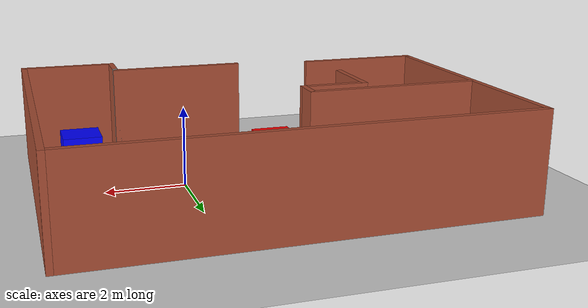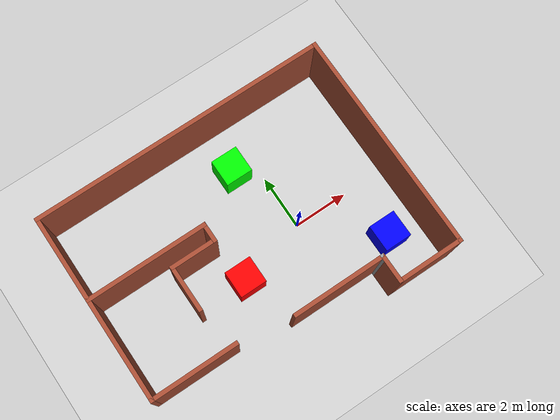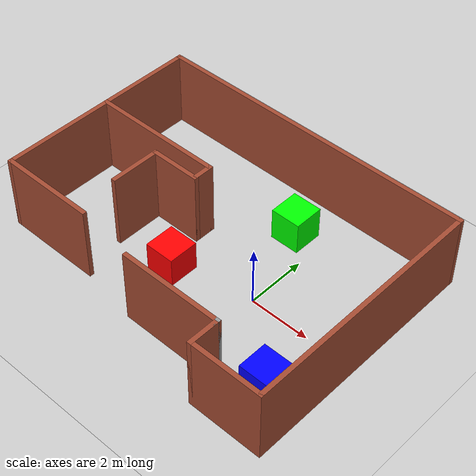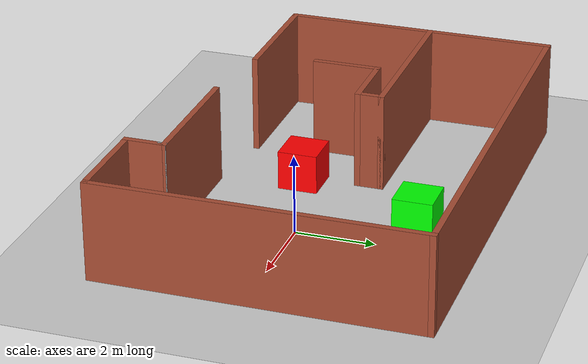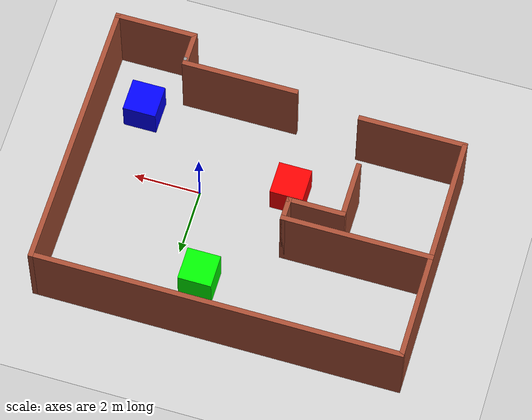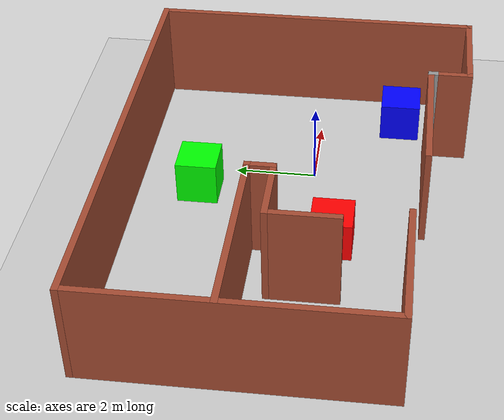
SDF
<sdf version="1.7">
 <world name="default">
  <light name="sun" type="directional">
   <pose>0 0 10 0 -0 0</pose>
   <diffuse>0.8 0.8 0.8 1</diffuse>
   <specular>0.2 0.2 0.2 1</specular>
   <attenuation>
    <range>1000</range>
    <constant>0.9</constant>
    <linear>0.01</linear>
    <quadratic>0.001</quadratic>
   </attenuation>
   <direction>-0.5 0.1 -0.9</direction>
   <spot><inner_angle>0</inner_angle><outer_angle>0</outer_angle><falloff>0</falloff></spot>
  </light>
  <model name="ground_plane">
   <static>1</static>
   <link name="link">
    <collision name="collision">
     <geometry><plane><normal>0 0 1</normal><size>100 100</size></plane></geometry>
     <surface><friction><ode><mu>100</mu><mu2>50</mu2></ode></friction></surface>
    </collision>
    <visual name="visual">
     <cast_shadows>0</cast_shadows>
     <geometry><plane><normal>0 0 1</normal><size>100 100</size></plane></geometry>
     <material>
      <script><uri>file://media/materials/scripts/gazebo.material</uri><name>Gazebo/Grey</name></script>
     </material>
    </visual>
   </link>
  </model>
  <gravity>0 0 -9.8</gravity>
  <magnetic_field>6e-06 2.3e-05 -4.2e-05</magnetic_field>
  <atmosphere type="adiabatic"/>
  <physics type="ode">
   <max_step_size>0.001</max_step_size>
   <real_time_factor>1</real_time_factor>
   <real_time_update_rate>1000</real_time_update_rate>
  </physics>
  <scene><ambient>0.4 0.4 0.4 1</ambient><background>0.7 0.7 0.7 1</background><shadows>1</shadows></scene>
  <audio><device>default</device></audio>
  <spherical_coordinates>
   <surface_model>EARTH_WGS84</surface_model>
   <latitude_deg>0</latitude_deg>
   <longitude_deg>0</longitude_deg>
   <elevation>0</elevation>
   <heading_deg>0</heading_deg>
  </spherical_coordinates>
  <model name="rover_wld.world">
   <pose>-1.81866 0.347534 0 0 -0 0</pose>
   <link name="Wall_10">
    <collision name="Wall_10_Collision">
     <geometry><box><size>8.25 0.15 2.5</size></box></geometry>
     <pose>0 0 1.25 0 -0 0</pose>
    </collision>
    <visual name="Wall_10_Visual">
     <pose>0 0 1.25 0 -0 0</pose>
     <geometry><box><size>8.25 0.15 2.5</size></box></geometry>
     <material>
      <script><uri>file://media/materials/scripts/gazebo.material</uri><name>Gazebo/Bricks</name></script>
      <ambient>1 1 1 1</ambient>
     </material>
     <meta><layer>0</layer></meta>
    </visual>
    <pose>5.425 0 0 0 -0 1.5708</pose>
   </link>
   <link name="Wall_11">
    <collision name="Wall_11_Collision">
     <geometry><box><size>11 0.15 2.5</size></box></geometry>
     <pose>0 0 1.25 0 -0 0</pose>
    </collision>
    <visual name="Wall_11_Visual">
     <pose>0 0 1.25 0 -0 0</pose>
     <geometry><box><size>11 0.15 2.5</size></box></geometry>
     <material>
      <script><uri>file://media/materials/scripts/gazebo.material</uri><name>Gazebo/Bricks</name></script>
      <ambient>1 1 1 1</ambient>
     </material>
     <meta><layer>0</layer></meta>
    </visual>
    <pose>-0 4.05 0 0 -0 3.14159</pose>
   </link>
   <link name="Wall_12">
    <collision name="Wall_12_Collision">
     <geometry><box><size>7 0.15 2.5</size></box></geometry>
     <pose>0 0 1.25 0 -0 0</pose>
    </collision>
    <visual name="Wall_12_Visual">
     <pose>0 0 1.25 0 -0 0</pose>
     <geometry><box><size>7 0.15 2.5</size></box></geometry>
     <material>
      <script><uri>file://media/materials/scripts/gazebo.material</uri><name>Gazebo/Bricks</name></script>
      <ambient>1 1 1 1</ambient>
     </material>
     <meta><layer>0</layer></meta>
    </visual>
    <pose>-5.425 0.625 0 0 -0 -1.5708</pose>
   </link>
   <link name="Wall_15">
    <collision name="Wall_15_Collision">
     <geometry><box><size>3.25 0.15 2.5</size></box></geometry>
     <pose>0 0 1.25 0 -0 0</pose>
    </collision>
    <visual name="Wall_15_Visual">
     <pose>0 0 1.25 0 -0 0</pose>
     <geometry><box><size>3.25 0.15 2.5</size></box></geometry>
     <material>
      <script><uri>file://media/materials/scripts/gazebo.material</uri><name>Gazebo/Bricks</name></script>
      <ambient>1 1 1 1</ambient>
     </material>
     <meta><layer>0</layer></meta>
    </visual>
    <pose>-3.875 -2.8 0 0 -0 0</pose>
   </link>
   <link name="Wall_18">
    <collision name="Wall_18_Collision">
     <geometry><box><size>4.5 0.15 2.5</size></box></geometry>
     <pose>0 0 1.25 0 -0 0</pose>
    </collision>
    <visual name="Wall_18_Visual">
     <pose>0 0 1.25 0 -0 0</pose>
     <geometry><box><size>4.5 0.15 2.5</size></box></geometry>
     <material>
      <script><uri>file://media/materials/scripts/gazebo.material</uri><name>Gazebo/Bricks</name></script>
      <ambient>1 1 1 1</ambient>
     </material>
     <meta><layer>0</layer></meta>
    </visual>
    <pose>-3.24985 0.917037 0 0 -0 0</pose>
   </link>
   <link name="Wall_19">
    <collision name="Wall_19_Collision">
     <geometry><box><size>0.75 0.15 2.5</size></box></geometry>
     <pose>0 0 1.25 0 -0 0</pose>
    </collision>
    <visual name="Wall_19_Visual">
     <pose>0 0 1.25 0 -0 0</pose>
     <geometry><box><size>0.75 0.15 2.5</size></box></geometry>
     <material>
      <script><uri>file://media/materials/scripts/gazebo.material</uri><name>Gazebo/Bricks</name></script>
      <ambient>1 1 1 1</ambient>
     </material>
     <meta><layer>0</layer></meta>
    </visual>
    <pose>-1.07485 0.617037 0 0 -0 -1.5708</pose>
   </link>
   <link name="Wall_20">
    <collision name="Wall_20_Collision">
     <geometry><box><size>1.75 0.15 2.5</size></box></geometry>
     <pose>0 0 1.25 0 -0 0</pose>
    </collision>
    <visual name="Wall_20_Visual">
     <pose>0 0 1.25 0 -0 0</pose>
     <geometry><box><size>1.75 0.15 2.5</size></box></geometry>
     <material>
      <script><uri>file://media/materials/scripts/gazebo.material</uri><name>Gazebo/Bricks</name></script>
      <ambient>1 1 1 1</ambient>
     </material>
     <meta><layer>0</layer></meta>
    </visual>
    <pose>-1.87485 0.317037 0 0 -0 3.14159</pose>
   </link>
   <link name="Wall_21">
    <collision name="Wall_21_Collision">
     <geometry><box><size>1.75 0.15 2.5</size></box></geometry>
     <pose>0 0 1.25 0 -0 0</pose>
    </collision>
    <visual name="Wall_21_Visual">
     <pose>0 0 1.25 0 -0 0</pose>
     <geometry><box><size>1.75 0.15 2.5</size></box></geometry>
     <material>
      <script><uri>file://media/materials/scripts/gazebo.material</uri><name>Gazebo/Bricks</name></script>
      <ambient>1 1 1 1</ambient>
     </material>
     <meta><layer>0</layer></meta>
    </visual>
    <pose>-2.67485 -0.482963 0 0 -0 -1.5708</pose>
   </link>
   <link name="Wall_6">
    <collision name="Wall_6_Collision">
     <geometry><box><size>3.5 0.15 2.5</size></box></geometry>
     <pose>0 0 1.25 0 -0 0</pose>
    </collision>
    <visual name="Wall_6_Visual">
     <pose>0 0 1.25 0 -0 0</pose>
     <geometry><box><size>3.5 0.15 2.5</size></box></geometry>
     <material>
      <script><uri>file://media/materials/scripts/gazebo.material</uri><name>Gazebo/Bricks</name></script>
      <ambient>1 1 1 1</ambient>
     </material>
     <meta><layer>0</layer></meta>
    </visual>
    <pose>1.4 -3.1 0 0 -0 0</pose>
   </link>
   <link name="Wall_7">
    <collision name="Wall_7_Collision">
     <geometry><box><size>0.25 0.15 2.5</size></box></geometry>
     <pose>0 0 1.25 0 -0 0</pose>
    </collision>
    <visual name="Wall_7_Visual">
     <pose>0 0 1.25 0 -0 0</pose>
     <geometry><box><size>0.25 0.15 2.5</size></box></geometry>
     <material>
      <script><uri>file://media/materials/scripts/gazebo.material</uri><name>Gazebo/Grey</name></script>
      <ambient>1 1 1 1</ambient>
     </material>
     <meta><layer>0</layer></meta>
    </visual>
    <pose>3.075 -3.15 0 0 -0 -1.5708</pose>
   </link>
   <link name="Wall_8">
    <collision name="Wall_8_Collision">
     <geometry><box><size>1 0.15 2.5</size></box></geometry>
     <pose>0 0 1.25 0 -0 0</pose>
    </collision>
    <visual name="Wall_8_Visual">
     <pose>0 0 1.25 0 -0 0</pose>
     <geometry><box><size>1 0.15 2.5</size></box></geometry>
     <material>
      <script><uri>file://media/materials/scripts/gazebo.material</uri><name>Gazebo/Bricks</name></script>
      <ambient>1 1 1 1</ambient>
     </material>
     <meta><layer>0</layer></meta>
    </visual>
    <pose>3.075 -3.625 0 0 -0 -1.5708</pose>
   </link>
   <link name="Wall_9">
    <collision name="Wall_9_Collision">
     <geometry><box><size>2.5 0.15 2.5</size></box></geometry>
     <pose>0 0 1.25 0 -0 0</pose>
    </collision>
    <visual name="Wall_9_Visual">
     <pose>0 0 1.25 0 -0 0</pose>
     <geometry><box><size>2.5 0.15 2.5</size></box></geometry>
     <material>
      <script><uri>file://media/materials/scripts/gazebo.material</uri><name>Gazebo/Bricks</name></script>
      <ambient>1 1 1 1</ambient>
     </material>
     <meta><layer>0</layer></meta>
    </visual>
    <pose>4.25 -4.05 0 0 -0 0</pose>
   </link>
   <static>1</static>
  </model>
  <model name="unit_box_0">
   <link name="link">
    <inertial>
     <mass>1</mass>
     <inertia>
      <ixx>0.166667</ixx>
      <ixy>0</ixy>
      <ixz>0</ixz>
      <iyy>0.166667</iyy>
      <iyz>0</iyz>
      <izz>0.166667</izz>
     </inertia>
    </inertial>
    <visual name="visual">
     <geometry><box><size>1 1 1</size></box></geometry>
     <material>
      <script><name>Gazebo/Grey</name><uri>file://media/materials/scripts/gazebo.material</uri></script>
      <shader type="pixel"><normal_map>__default__</normal_map></shader>
      <ambient>1 0 0 0</ambient>
      <diffuse>0.7 0.7 0.7 1</diffuse>
      <specular>0.01 0.01 0.01 1</specular>
      <emissive>0 0 0 1</emissive>
     </material>
    </visual>
    <collision name="collision">
     <geometry><box><size>1 1 1</size></box></geometry>
     <surface>
      <friction>
       <ode><mu>1</mu><mu2>1</mu2><fdir1>0 0 0</fdir1><slip1>0</slip1><slip2>0</slip2></ode>
       <torsional>
        <coefficient>1</coefficient>
        <patch_radius>0</patch_radius>
        <surface_radius>0</surface_radius>
        <use_patch_radius>1</use_patch_radius>
        <ode><slip>0</slip></ode>
       </torsional>
      </friction>
      <bounce><restitution_coefficient>0</restitution_coefficient><threshold>1e+06</threshold></bounce>
      <contact>
       <collide_without_contact>0</collide_without_contact>
       <collide_without_contact_bitmask>1</collide_without_contact_bitmask>
       <collide_bitmask>1</collide_bitmask>
       <ode>
        <soft_cfm>0</soft_cfm>
        <soft_erp>0.2</soft_erp>
        <kp>1e+13</kp>
        <kd>1</kd>
        <max_vel>0.01</max_vel>
        <min_depth>0</min_depth>
       </ode>
       <bullet>
        <split_impulse>1</split_impulse>
        <split_impulse_penetration_threshold>-0.01</split_impulse_penetration_threshold>
        <soft_cfm>0</soft_cfm>
        <soft_erp>0.2</soft_erp>
        <kp>1e+13</kp>
        <kd>1</kd>
       </bullet>
      </contact>
     </surface>
    </collision>
   </link>
   <static>0</static>
   <pose>-2.58609 -0.653154 0.5 0 -0 0</pose>
  </model>
  <model name="unit_box">
   <link name="link">
    <inertial>
     <mass>1</mass>
     <inertia>
      <ixx>0.166667</ixx>
      <ixy>0</ixy>
      <ixz>0</ixz>
      <iyy>0.166667</iyy>
      <iyz>0</iyz>
      <izz>0.166667</izz>
     </inertia>
    </inertial>
    <visual name="visual">
     <geometry><box><size>1 1 1.1611</size></box></geometry>
     <material>
      <script><name>Gazebo/Grey</name><uri>file://media/materials/scripts/gazebo.material</uri></script>
      <shader type="pixel"><normal_map>__default__</normal_map></shader>
      <ambient>0 1 0 0</ambient>
      <diffuse>0.7 0.7 0.7 1</diffuse>
      <specular>0.01 0.01 0.01 1</specular>
      <emissive>0 0 0 1</emissive>
     </material>
    </visual>
    <collision name="collision">
     <geometry><box><size>1 1 1.1611</size></box></geometry>
     <surface>
      <friction>
       <ode><mu>1</mu><mu2>1</mu2><fdir1>0 0 0</fdir1><slip1>0</slip1><slip2>0</slip2></ode>
       <torsional>
        <coefficient>1</coefficient>
        <patch_radius>0</patch_radius>
        <surface_radius>0</surface_radius>
        <use_patch_radius>1</use_patch_radius>
        <ode><slip>0</slip></ode>
       </torsional>
      </friction>
      <bounce><restitution_coefficient>0</restitution_coefficient><threshold>1e+06</threshold></bounce>
      <contact>
       <collide_without_contact>0</collide_without_contact>
       <collide_without_contact_bitmask>1</collide_without_contact_bitmask>
       <collide_bitmask>1</collide_bitmask>
       <ode>
        <soft_cfm>0</soft_cfm>
        <soft_erp>0.2</soft_erp>
        <kp>1e+13</kp>
        <kd>1</kd>
        <max_vel>0.01</max_vel>
        <min_depth>0</min_depth>
       </ode>
       <bullet>
        <split_impulse>1</split_impulse>
        <split_impulse_penetration_threshold>-0.01</split_impulse_penetration_threshold>
        <soft_cfm>0</soft_cfm>
        <soft_erp>0.2</soft_erp>
        <kp>1e+13</kp>
        <kd>1</kd>
       </bullet>
      </contact>
     </surface>
    </collision>
   </link>
   <static>0</static>
   <pose>-0.849568 2.78986 0.5 0 -0 0</pose>
  </model>
  <model name="unit_box_1">
   <link name="link">
    <inertial>
     <mass>1</mass>
     <inertia>
      <ixx>0.166667</ixx>
      <ixy>0</ixy>
      <ixz>0</ixz>
      <iyy>0.166667</iyy>
      <iyz>0</iyz>
      <izz>0.166667</izz>
     </inertia>
    </inertial>
    <visual name="visual">
     <geometry><box><size>1 1 1</size></box></geometry>
     <material>
      <script><name>Gazebo/Grey</name><uri>file://media/materials/scripts/gazebo.material</uri></script>
      <shader type="pixel"><normal_map>__default__</normal_map></shader>
      <ambient>0 0 1 0</ambient>
      <diffuse>0.7 0.7 0.7 1</diffuse>
      <specular>0.01 0.01 0.01 1</specular>
      <emissive>0 0 0 1</emissive>
     </material>
    </visual>
    <collision name="collision">
     <geometry><box><size>1 1 1</size></box></geometry>
     <surface>
      <friction>
       <ode><mu>1</mu><mu2>1</mu2><fdir1>0 0 0</fdir1><slip1>0</slip1><slip2>0</slip2></ode>
       <torsional>
        <coefficient>1</coefficient>
        <patch_radius>0</patch_radius>
        <surface_radius>0</surface_radius>
        <use_patch_radius>1</use_patch_radius>
        <ode><slip>0</slip></ode>
       </torsional>
      </friction>
      <bounce><restitution_coefficient>0</restitution_coefficient><threshold>1e+06</threshold></bounce>
      <contact>
       <collide_without_contact>0</collide_without_contact>
       <collide_without_contact_bitmask>1</collide_without_contact_bitmask>
       <collide_bitmask>1</collide_bitmask>
       <ode>
        <soft_cfm>0</soft_cfm>
        <soft_erp>0.2</soft_erp>
        <kp>1e+13</kp>
        <kd>1</kd>
        <max_vel>0.01</max_vel>
        <min_depth>0</min_depth>
       </ode>
       <bullet>
        <split_impulse>1</split_impulse>
        <split_impulse_penetration_threshold>-0.01</split_impulse_penetration_threshold>
        <soft_cfm>0</soft_cfm>
        <soft_erp>0.2</soft_erp>
        <kp>1e+13</kp>
        <kd>1</kd>
       </bullet>
      </contact>
     </surface>
    </collision>
   </link>
   <static>0</static>
   <pose>2.33002 -2.05837 0.5 0 -0 0</pose>
  </model>
 </world>
</sdf>
